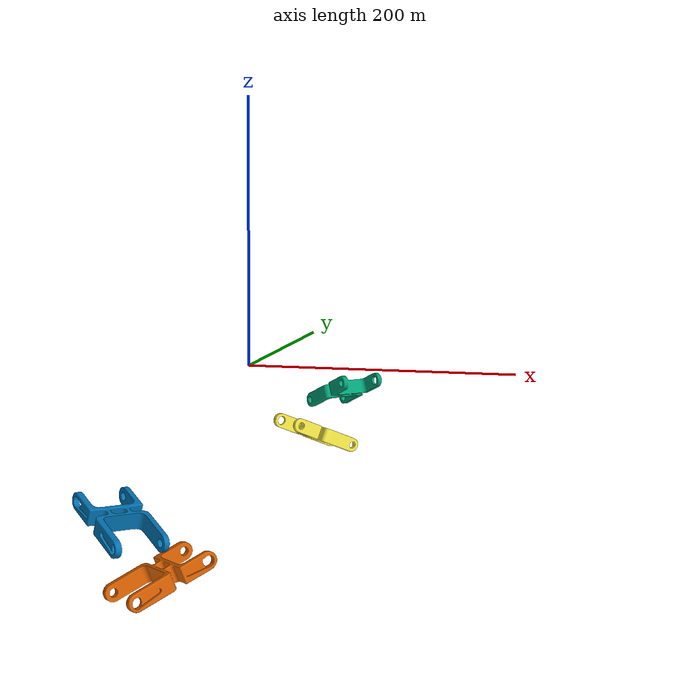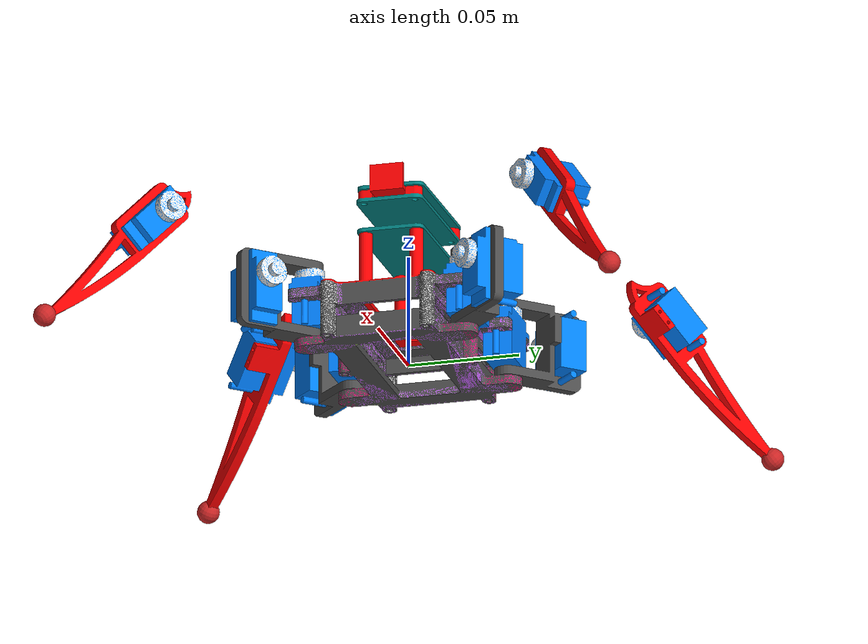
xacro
<?xml version="1.0"?>
<robot name="open_critter" xmlns:xacro="http://www.ros.org/wiki/xacro">

  <xacro:include filename="$(find open_critter)/urdf/inertia.xacro"/>
  <xacro:include filename="$(find open_critter)/urdf/leg.xacro"/>

  <xacro:property name="use_stand" value="false"/>
  <xacro:property name="rubber_paw" value="true"/>

  <xacro:if value="${use_stand}">
    <link name="stand_link">
      <visual>
        <origin rpy="0 0 0" xyz="0 0 0"/>
        <geometry>
          <box size="0.2 0.2 0.02"/>
        </geometry>
      </visual>
      <collision>
        <origin rpy="0 0 0" xyz="0 0 0"/>
        <geometry>
          <box size="0.2 0.2 0.02"/>
        </geometry>
      </collision>
      <inertial>
        <origin rpy="0 0 0" xyz="0 0 0"/>
        <geometry>
          <box size="0.2 0.2 0.02"/>
        </geometry>
          <mass value="10.0"/>
          <xacro:box_inertia m="10.0" x="0.2" y="0.2" z="0.02" />
      </inertial>
    </link>

    <joint name="stand_joint" type="fixed">
      <parent link="stand_link"/>
      <child link="base_link"/>
      <origin rpy="0 0 0" xyz="0.0 0.0 0.4"/>
    </joint>
  </xacro:if>

  <link name="base_footprint"/>
  <joint name="stand_joint" type="fixed">
    <parent link="base_footprint"/>
    <child link="base_link"/>
    <origin rpy="0 0 0" xyz="0.0 0.0 0.0"/>
  </joint>

  <link name="base_link">
    <visual>
      <origin rpy="0 0 3.14" xyz="0.0 0.0 0.04"/>
      <geometry>
        <mesh filename="package://open_critter/meshes/collada/body.dae"/>
      </geometry>
    </visual>
    <collision>
      <origin rpy="0 0 3.14" xyz="0.0 0.0 0.04"/>
      <geometry>
        <mesh filename="package://open_critter/meshes/collada/body.dae"/>
      </geometry>
    </collision>
    <inertial>
      <origin rpy="0 0 0" xyz="0 0 0"/>
      <geometry>
        <box size="0.1 0.05 0.03"/>
      </geometry>
        <mass value="0.2"/>
        <xacro:box_inertia m="0.2" x="0.1" y="0.05" z="0.03" />
    </inertial>
  </link>

  <xacro:leg name="front_left" odd="true" paw="${rubber_paw}" parent_link="base_link">
    <origin xyz="0.03 0.035 0.0225" rpy="0 0 ${pi}"/>
  </xacro:leg>

  <xacro:leg name="rear_left" odd="false" paw="${rubber_paw}" parent_link="base_link">
    <origin xyz="-0.03 0.035 0.0225" rpy="0 0 0"/>
  </xacro:leg>

  <xacro:leg name="rear_right" odd="true" paw="${rubber_paw}" parent_link="base_link">
    <origin xyz="-0.03 -0.035 0.0225" rpy="0 0 0"/>
  </xacro:leg>

  <xacro:leg name="front_right" odd="false" paw="${rubber_paw}" parent_link="base_link">
    <origin xyz="0.03 -0.035 0.0225" rpy="0 0 ${pi}"/>
  </xacro:leg>

  <gazebo>
      <plugin name="gazebo_ros_control" filename="libgazebo_ros_control.so">
          <robotNamespace>/open_critter</robotNamespace>
      </plugin>
  </gazebo>

  <gazebo>
      <plugin name="p3d_base_controller" filename="libgazebo_ros_p3d.so">
          <alwaysOn>true</alwaysOn>
          <updateRate>100.0</updateRate>
          <bodyName>base_link</bodyName>
          <topicName>/gazebo/odom</topicName>
          <gaussianNoise>0.00001</gaussianNoise>
          <frameName>world</frameName>
          <xyzOffsets>0 0 0</xyzOffsets>
          <rpyOffsets>0 0 0</rpyOffsets>
      </plugin>
  </gazebo>

</robot>

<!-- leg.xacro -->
<robot xmlns:xacro="http://www.ros.org/wiki/xacro">

<xacro:macro name="leg" params="name odd parent_link paw *origin">

  <xacro:property name="servo_effort"    value="10"/>
  <xacro:property name="servo_velocity"  value="4.0"/>
  <xacro:property name="servo_torque"    value="10"/>
  <xacro:property name="servo_reduction" value="1.0"/>

  <xacro:property name="coxa_lower" value="-1.0"/>
  <xacro:property name="coxa_upper" value="1.0"/>

  <xacro:if value="${odd}">
    <xacro:property name="coxa_model"  value="package://open_critter/meshes/collada/coxa_front.dae"/>
    <xacro:property name="tibia_model" value="package://open_critter/meshes/collada/tibia_rear.dae"/>
    <xacro:property name="yaw" value="0"/>
    <xacro:property name="cyaw" value="${-pi/4}"/>
    <xacro:property name="nyaw" value="${pi}"/>
    <xacro:property name="side" value="1.0"/>
    <xacro:property name="servo_x" value="0"/>
    <xacro:property name="tibia_x" value="0.0075"/>
    <xacro:property name="paw_x" value="0.0015"/>

  </xacro:if>
  <xacro:unless value="${odd}"> <!-- EVEN -->
    <xacro:property name="coxa_model" value="package://open_critter/meshes/collada/coxa_rear.dae"/>
    <xacro:property name="tibia_model" value="package://open_critter/meshes/collada/tibia_front.dae"/>
    <xacro:property name="yaw" value="${pi}"/>
    <xacro:property name="cyaw" value="${pi+pi/4}"/>
    <xacro:property name="nyaw" value="0"/>
    <xacro:property name="side" value="-1.0"/>
    <xacro:property name="servo_x" value="-0.005"/>
    <xacro:property name="tibia_x" value="-0.0025"/>
    <xacro:property name="paw_x" value="0.0035"/>

  </xacro:unless>

  <joint name="${name}_base" type="fixed">
    <parent link="${parent_link}"/>
    <child link="${name}_coxa_servo"/>
    <xacro:insert_block name="origin"/>
  </joint>

  <link name="${name}_coxa_servo">
    <visual>
      <origin rpy="0 0 0" xyz="0 0 0"/>
      <geometry>
        <mesh filename="package://open_critter/meshes/collada/servo.dae"/>
      </geometry>
    </visual>
    <inertial>
      <origin rpy="0 0 0" xyz="0 0 0"/>
      <geometry>
        <box size="0.02 0.01 0.03"/>
      </geometry>
        <mass value="0.009"/>
        <xacro:box_inertia m="0.009" x="0.02" y="0.01" z="0.03" />
    </inertial>
  </link>

  <joint name="${name}_coxa_joint" type="revolute">
    <parent link="${name}_coxa_servo"/>
    <child link="${name}_coxa_link"/>
    <origin rpy="0 0 ${cyaw}" xyz="-0.005 0 -0.002"/>
    <limit effort="${servo_effort}" velocity="${servo_velocity}" lower="${coxa_lower}" upper="${coxa_upper}"/>
    <axis xyz="0 0 1"/>
  </joint>
  <transmission name="${name}_coxa_transmission">
      <type>transmission_interface/SimpleTransmission</type>
      <joint name="${name}_coxa_joint">
          <hardwareInterface>hardware_interface/PositionJointInterface</hardwareInterface>
      </joint>
      <actuator name="${name}_coxa_actuator">
          <hardwareInterface>hardware_interface/PositionJointInterface</hardwareInterface>
          <mechanicalReduction>${servo_reduction}</mechanicalReduction>
          <motorTorqueConstant>${servo_torque}</motorTorqueConstant>
      </actuator>
  </transmission>

  <link name="${name}_coxa_link">
    <visual>
    <origin rpy="0 0 ${yaw}" xyz="${side*0.002} -0.016 0"/>
      <geometry>
        <mesh filename="${coxa_model}"/>
      </geometry>
    </visual>
    <collision>
    <origin rpy="0 0 ${yaw}" xyz="${side*0.002} -0.016 0"/>
      <geometry>
        <mesh filename="${coxa_model}"/>
      </geometry>
    </collision>
    <inertial>
      <origin rpy="0 0 0" xyz="0 0 0"/>
      <geometry>
        <box size="0.04 0.01 0.03"/>
      </geometry>
        <mass value="0.001"/>
        <xacro:box_inertia m="0.001" x="0.04" y="0.01" z="0.03" />
    </inertial>
  </link>
  <gazebo reference="${name}_coxa_link">
    <gravity>true</gravity>
    <selfCollide>true</selfCollide>
  </gazebo>

  <joint name="${name}_femur_servo_to_coxa_joint" type="fixed">
    <parent link="${name}_coxa_link"/>
    <child link="${name}_femur_servo"/>
    <origin rpy="0 0 0" xyz="${side*-0.005} -0.0275 0"/>
  </joint>

  <link name="${name}_femur_servo">
    <visual>
      <origin rpy="0 ${pi/2} ${nyaw}" xyz="0 0 0"/>
      <geometry>
        <mesh filename="package://open_critter/meshes/collada/servo.dae"/>
      </geometry>
    </visual>
    <inertial>
      <origin rpy="0 ${pi/2} ${nyaw}" xyz="0 0 0"/>
      <geometry>
        <box size="0.02 0.01 0.03"/>
      </geometry>
        <mass value="0.009"/>
        <xacro:box_inertia m="0.009" x="0.02" y="0.01" z="0.03" />
    </inertial>
  </link>

  <joint name="${name}_femur_joint" type="revolute">
    <parent link="${name}_femur_servo"/>
    <child link="${name}_femur_link"/>
    <origin rpy="${-pi/8} 0 0" xyz="${servo_x} 0 0.005"/>
    <limit effort="${servo_effort}" velocity="${servo_velocity}" lower="-1.0" upper="1.0"/>
    <axis xyz="${-1*side} 0 0"/>
  </joint>
  <transmission name="${name}_femur_transmission">
      <type>transmission_interface/SimpleTransmission</type>
      <joint name="${name}_femur_joint">
          <hardwareInterface>hardware_interface/PositionJointInterface</hardwareInterface>
      </joint>
      <actuator name="${name}_femur_actuator">
          <hardwareInterface>hardware_interface/PositionJointInterface</hardwareInterface>
          <mechanicalReduction>${servo_reduction}</mechanicalReduction>
          <motorTorqueConstant>${servo_torque}</motorTorqueConstant>
      </actuator>
  </transmission>

  <link name="${name}_femur_link">
    <visual>
    <origin rpy="0 ${nyaw} 0" xyz="0.0025 -0.0275 0"/>
      <geometry>
        <mesh filename="package://open_critter/meshes/collada/femur.dae"/>
      </geometry>
    </visual>
    <collision>
    <origin rpy="0 ${nyaw} 0" xyz="0.0025 -0.0275 0"/>
      <geometry>
        <mesh filename="package://open_critter/meshes/collada/femur.dae"/>
      </geometry>
    </collision>
    <inertial>
      <origin rpy="0 0 0" xyz="0 0 0"/>
      <geometry>
        <box size="0.05 0.01 0.03"/>
      </geometry>
        <mass value="0.002"/>
        <xacro:box_inertia m="0.002" x="0.05" y="0.01" z="0.03" />
    </inertial>
  </link>
  <gazebo reference="${name}_femur_link">
    <gravity>true</gravity>
    <selfCollide>true</selfCollide>
  </gazebo>

  <joint name="${name}_tibia_joint" type="revolute">
    <parent link="${name}_femur_link"/>
    <child link="${name}_tibia_servo"/>
    <origin rpy="${-pi/8} 0 0" xyz="0 -0.055 0"/>
    <limit effort="${servo_effort}" velocity="${servo_velocity}" lower="-1.0" upper="1.0"/>
    <axis xyz="${side} 0 0"/>
    <dynamics friction="0.7"/>
  </joint>
  <transmission name="${name}_tibia_transmission">
      <type>transmission_interface/SimpleTransmission</type>
      <joint name="${name}_tibia_joint">
          <hardwareInterface>hardware_interface/PositionJointInterface</hardwareInterface>
      </joint>
      <actuator name="${name}_tibia_actuator">
          <hardwareInterface>hardware_interface/PositionJointInterface</hardwareInterface>
          <mechanicalReduction>${servo_reduction}</mechanicalReduction>
          <motorTorqueConstant>${servo_torque}</motorTorqueConstant>
      </actuator>
  </transmission>

  <link name="${name}_tibia_servo">
    <visual>
      <origin rpy="0 ${pi/2} ${nyaw}" xyz="${side*servo_x} 0 -0.005"/>
      <geometry>
        <mesh filename="package://open_critter/meshes/collada/servo.dae"/>
      </geometry>
    </visual>
    <inertial>
      <origin rpy="0 ${pi/2} ${nyaw}" xyz="${side*servo_x} 0 -0.005"/>
      <geometry>
        <box size="0.02 0.01 0.03"/>
      </geometry>
        <mass value="0.009"/>
        <xacro:box_inertia m="0.009" x="0.02" y="0.01" z="0.03" />
    </inertial>
  </link>

  <joint name="${name}_tibia_servo_to_femur_joint" type="fixed">
    <parent link="${name}_tibia_servo"/>
    <child link="${name}_tibia_link"/>
    <origin rpy="0 0 0" xyz="0 0 0"/>
  </joint>

  <link name="${name}_tibia_link">
    <visual>
      <origin rpy="0 0 ${nyaw}" xyz="${tibia_x} 0 -0.03"/>
      <geometry>
        <mesh filename="${tibia_model}"/>
      </geometry>
    </visual>
    <collision>
      <origin rpy="0 0 ${nyaw}" xyz="${tibia_x} 0 -0.03"/>
      <geometry>
        <mesh filename="${tibia_model}"/>
      </geometry>
    </collision>
    <inertial>
      <origin rpy="0 0 0" xyz="0 0 0"/>
      <geometry>
        <box size="0.1 0.005 0.005"/>
      </geometry>
        <mass value="0.001"/>
        <xacro:box_inertia m="0.001" x="0.1" y="0.005" z="0.005" />
    </inertial>
  </link>
  <gazebo reference="${name}_tibia_link">
    <mu1 value="5.0"/>
    <mu2 value="0.5"/>
    <kp value="10000000.0" />
    <kd value="1.0" />
    <fdir1 value="1 0 0"/>
    <turnGravityOff>false</turnGravityOff>
    <selfCollide>true</selfCollide>
  </gazebo>

  <!-- RUBBER BALL PAW -->
  <xacro:if value="${paw}">

    <joint name="${name}_tibia_paw_joint" type="fixed">
      <parent link="${name}_tibia_link"/>
      <child link="${name}_paw_link"/>
      <origin rpy="0 0 0" xyz="${paw_x} 0 -0.08"/>
    </joint>

    <link name="${name}_paw_link">
      <visual>
        <origin rpy="0 0 0" xyz="0 0 0"/>
        <geometry>
          <sphere radius="0.005"/>
        </geometry>
      </visual>
      <collision>
        <origin rpy="0 0 0" xyz="0 0 0"/>
        <geometry>
          <sphere radius="0.005"/>
        </geometry>
      </collision>
      <inertial>
        <origin rpy="0 0 0" xyz="0 0 0"/>
        <geometry>
          <sphere radius="0.005"/>
        </geometry>
          <mass value="0.001"/>
          <xacro:sphere_inertia m="0.001" r="0.005"/>
      </inertial>
    </link>

    <gazebo reference="${name}_paw_link">
      <gravity>true</gravity>
      <selfCollide>true</selfCollide>
      <mu1>0.1</mu1>
      <mu2>0.1</mu2>
      <kp>1000000.0</kp>
      <kd>1.0</kd>
      <fdir1>0 1 0</fdir1>
      <maxContacts>1</maxContacts>
      <minDepth>0.0001</minDepth>
      <collision name="${name}__paw_link_collision">
        <geometry>
            <sphere>
            <radius>0.005</radius>
        </sphere>
        </geometry>
        <surface>
          <friction>
            <torsional>
                <coefficient>10</coefficient>
                <use_patch_radius>false</use_patch_radius>
                <surface_radius>0.01</surface_radius>
                <patch_radius>0.01</patch_radius>
            </torsional>
          </friction>
          <contact>
            <poissons_ratio>0.01</poissons_ratio>
            <elastic_modulus>1e8</elastic_modulus>
          </contact>
        </surface>
      </collision>
      <material>Gazebo/Red</material>
    </gazebo>
  </xacro:if>

</xacro:macro>

</robot>
